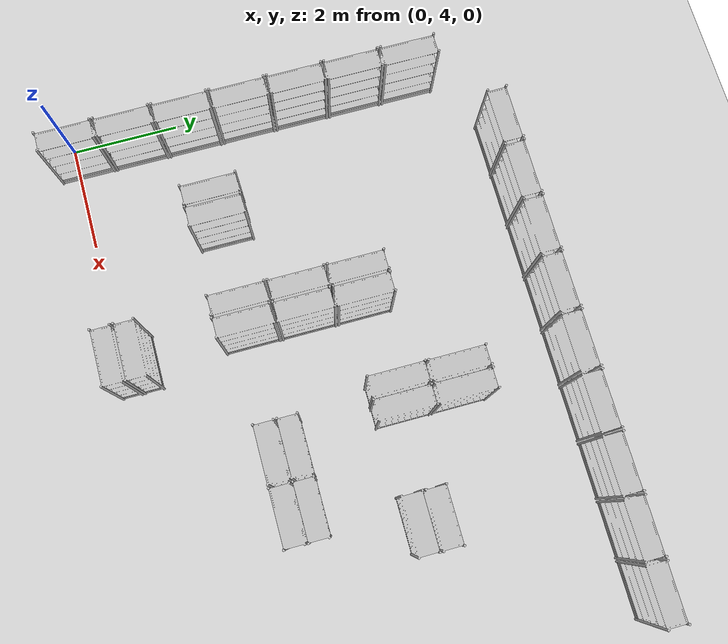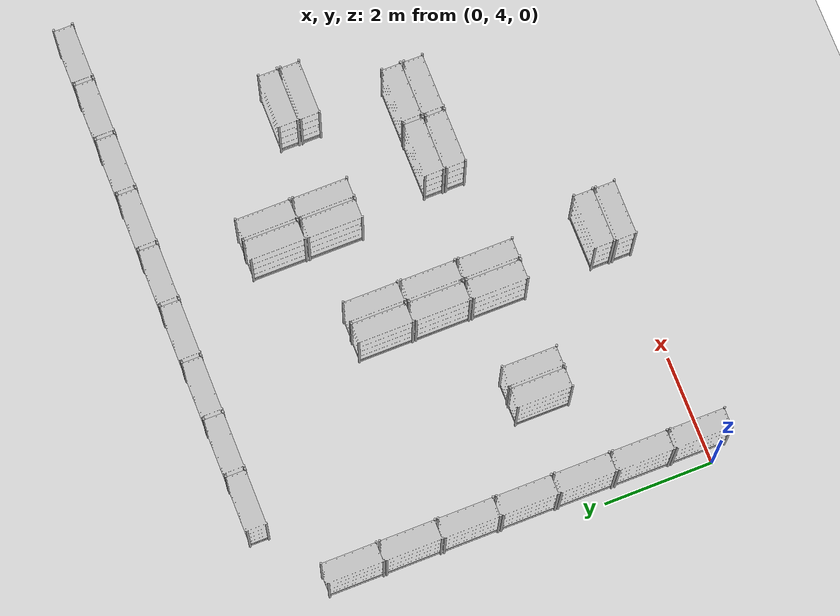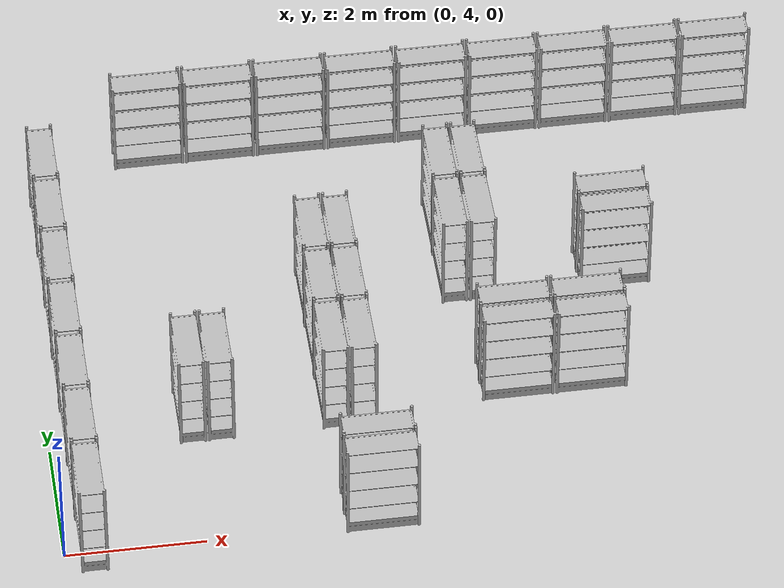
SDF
<sdf version="1.6">
 <world name="default">
  <model name="ground_plane">
   <static>1</static>
   <link name="link">
    <collision name="collision">
     <geometry><plane><normal>0 0 1</normal><size>100 100</size></plane></geometry>
     <surface>
      <contact><collide_bitmask>65535</collide_bitmask></contact>
      <friction><ode><mu>1000</mu><mu2>1000</mu2></ode></friction>
     </surface>
    </collision>
    <visual name="visual">
     <cast_shadows>0</cast_shadows>
     <geometry><plane><normal>0 0 1</normal><size>100 100</size></plane></geometry>
     <material>
      <script><uri>file://media/materials/scripts/gazebo.material</uri><name>Gazebo/Grey</name></script>
     </material>
    </visual>
   </link>
  </model>
  <model name="store_shelf_moduled_9">
   <link name="link">
    <collision name="collision">
     <geometry><mesh><uri>model://store_shelf_moduled/meshes/store_shelf_moduled.dae</uri></mesh></geometry>
    </collision>
    <visual name="visual">
     <geometry><mesh><uri>model://store_shelf_moduled/meshes/store_shelf_moduled.dae</uri></mesh></geometry>
    </visual>
    <inertial>
     <mass>1000</mass>
     <inertia>
      <ixx>840083</ixx>
      <ixy>0</ixy>
      <ixz>0</ixz>
      <iyy>475500</iyy>
      <iyz>0</iyz>
      <izz>1.30208e+06</izz>
     </inertia>
    </inertial>
   </link>
   <static>1</static>
   <pose>11.06 12.02 0 0 0 3.141593</pose>
  </model>
  <model name="store_shelf_moduled_10">
   <link name="link">
    <collision name="collision">
     <geometry><mesh><uri>model://store_shelf_moduled/meshes/store_shelf_moduled.dae</uri></mesh></geometry>
    </collision>
    <visual name="visual">
     <geometry><mesh><uri>model://store_shelf_moduled/meshes/store_shelf_moduled.dae</uri></mesh></geometry>
    </visual>
    <inertial>
     <mass>1000</mass>
     <inertia>
      <ixx>840083</ixx>
      <ixy>0</ixy>
      <ixz>0</ixz>
      <iyy>475500</iyy>
      <iyz>0</iyz>
      <izz>1.30208e+06</izz>
     </inertia>
    </inertial>
   </link>
   <static>1</static>
   <pose>10 12.02 0 0 0 3.141593</pose>
  </model>
  <model name="store_shelf_moduled_11">
   <link name="link">
    <collision name="collision">
     <geometry><mesh><uri>model://store_shelf_moduled/meshes/store_shelf_moduled.dae</uri></mesh></geometry>
    </collision>
    <visual name="visual">
     <geometry><mesh><uri>model://store_shelf_moduled/meshes/store_shelf_moduled.dae</uri></mesh></geometry>
    </visual>
    <inertial>
     <mass>1000</mass>
     <inertia>
      <ixx>840083</ixx>
      <ixy>0</ixy>
      <ixz>0</ixz>
      <iyy>475500</iyy>
      <iyz>0</iyz>
      <izz>1.30208e+06</izz>
     </inertia>
    </inertial>
   </link>
   <static>1</static>
   <pose>8.94 12.02 0 0 0 3.141593</pose>
  </model>
  <model name="store_shelf_moduled_12">
   <link name="link">
    <collision name="collision">
     <geometry><mesh><uri>model://store_shelf_moduled/meshes/store_shelf_moduled.dae</uri></mesh></geometry>
    </collision>
    <visual name="visual">
     <geometry><mesh><uri>model://store_shelf_moduled/meshes/store_shelf_moduled.dae</uri></mesh></geometry>
    </visual>
    <inertial>
     <mass>1000</mass>
     <inertia>
      <ixx>840083</ixx>
      <ixy>0</ixy>
      <ixz>0</ixz>
      <iyy>475500</iyy>
      <iyz>0</iyz>
      <izz>1.30208e+06</izz>
     </inertia>
    </inertial>
   </link>
   <static>1</static>
   <pose>7.88 12.02 0 0 0 3.141593</pose>
  </model>
  <model name="store_shelf_moduled_13">
   <link name="link">
    <collision name="collision">
     <geometry><mesh><uri>model://store_shelf_moduled/meshes/store_shelf_moduled.dae</uri></mesh></geometry>
    </collision>
    <visual name="visual">
     <geometry><mesh><uri>model://store_shelf_moduled/meshes/store_shelf_moduled.dae</uri></mesh></geometry>
    </visual>
    <inertial>
     <mass>1000</mass>
     <inertia>
      <ixx>840083</ixx>
      <ixy>0</ixy>
      <ixz>0</ixz>
      <iyy>475500</iyy>
      <iyz>0</iyz>
      <izz>1.30208e+06</izz>
     </inertia>
    </inertial>
   </link>
   <static>1</static>
   <pose>6.82 12.02 0 0 0 3.141593</pose>
  </model>
  <model name="store_shelf_moduled_14">
   <link name="link">
    <collision name="collision">
     <geometry><mesh><uri>model://store_shelf_moduled/meshes/store_shelf_moduled.dae</uri></mesh></geometry>
    </collision>
    <visual name="visual">
     <geometry><mesh><uri>model://store_shelf_moduled/meshes/store_shelf_moduled.dae</uri></mesh></geometry>
    </visual>
    <inertial>
     <mass>1000</mass>
     <inertia>
      <ixx>840083</ixx>
      <ixy>0</ixy>
      <ixz>0</ixz>
      <iyy>475500</iyy>
      <iyz>0</iyz>
      <izz>1.30208e+06</izz>
     </inertia>
    </inertial>
   </link>
   <static>1</static>
   <pose>5.76 12.02 0 0 0 3.141593</pose>
  </model>
  <model name="store_shelf_moduled_15">
   <link name="link">
    <collision name="collision">
     <geometry><mesh><uri>model://store_shelf_moduled/meshes/store_shelf_moduled.dae</uri></mesh></geometry>
    </collision>
    <visual name="visual">
     <geometry><mesh><uri>model://store_shelf_moduled/meshes/store_shelf_moduled.dae</uri></mesh></geometry>
    </visual>
    <inertial>
     <mass>1000</mass>
     <inertia>
      <ixx>840083</ixx>
      <ixy>0</ixy>
      <ixz>0</ixz>
      <iyy>475500</iyy>
      <iyz>0</iyz>
      <izz>1.30208e+06</izz>
     </inertia>
    </inertial>
   </link>
   <static>1</static>
   <pose>4.7 12.02 0 0 0 3.141593</pose>
  </model>
  <model name="store_shelf_moduled_16">
   <link name="link">
    <collision name="collision">
     <geometry><mesh><uri>model://store_shelf_moduled/meshes/store_shelf_moduled.dae</uri></mesh></geometry>
    </collision>
    <visual name="visual">
     <geometry><mesh><uri>model://store_shelf_moduled/meshes/store_shelf_moduled.dae</uri></mesh></geometry>
    </visual>
    <inertial>
     <mass>1000</mass>
     <inertia>
      <ixx>840083</ixx>
      <ixy>0</ixy>
      <ixz>0</ixz>
      <iyy>475500</iyy>
      <iyz>0</iyz>
      <izz>1.30208e+06</izz>
     </inertia>
    </inertial>
   </link>
   <static>1</static>
   <pose>3.64 12.02 0 0 0 3.141593</pose>
  </model>
  <model name="store_shelf_moduled_17">
   <link name="link">
    <collision name="collision">
     <geometry><mesh><uri>model://store_shelf_moduled/meshes/store_shelf_moduled.dae</uri></mesh></geometry>
    </collision>
    <visual name="visual">
     <geometry><mesh><uri>model://store_shelf_moduled/meshes/store_shelf_moduled.dae</uri></mesh></geometry>
    </visual>
    <inertial>
     <mass>1000</mass>
     <inertia>
      <ixx>840083</ixx>
      <ixy>0</ixy>
      <ixz>0</ixz>
      <iyy>475500</iyy>
      <iyz>0</iyz>
      <izz>1.30208e+06</izz>
     </inertia>
    </inertial>
   </link>
   <static>1</static>
   <pose>2.58 12.02 0 0 0 3.141593</pose>
  </model>
  <model name="store_shelf_moduled_18">
   <link name="link">
    <collision name="collision">
     <geometry><mesh><uri>model://store_shelf_moduled/meshes/store_shelf_moduled.dae</uri></mesh></geometry>
    </collision>
    <visual name="visual">
     <geometry><mesh><uri>model://store_shelf_moduled/meshes/store_shelf_moduled.dae</uri></mesh></geometry>
    </visual>
    <inertial>
     <mass>1000</mass>
     <inertia>
      <ixx>840083</ixx>
      <ixy>0</ixy>
      <ixz>0</ixz>
      <iyy>475500</iyy>
      <iyz>0</iyz>
      <izz>1.30208e+06</izz>
     </inertia>
    </inertial>
   </link>
   <static>1</static>
   <pose>0.2 11.06 0 0 0 -1.570796</pose>
  </model>
  <model name="store_shelf_moduled_19">
   <link name="link">
    <collision name="collision">
     <geometry><mesh><uri>model://store_shelf_moduled/meshes/store_shelf_moduled.dae</uri></mesh></geometry>
    </collision>
    <visual name="visual">
     <geometry><mesh><uri>model://store_shelf_moduled/meshes/store_shelf_moduled.dae</uri></mesh></geometry>
    </visual>
    <inertial>
     <mass>1000</mass>
     <inertia>
      <ixx>840083</ixx>
      <ixy>0</ixy>
      <ixz>0</ixz>
      <iyy>475500</iyy>
      <iyz>0</iyz>
      <izz>1.30208e+06</izz>
     </inertia>
    </inertial>
   </link>
   <static>1</static>
   <pose>0.2 10 0 0 0 -1.570796</pose>
  </model>
  <model name="store_shelf_moduled_20">
   <link name="link">
    <collision name="collision">
     <geometry><mesh><uri>model://store_shelf_moduled/meshes/store_shelf_moduled.dae</uri></mesh></geometry>
    </collision>
    <visual name="visual">
     <geometry><mesh><uri>model://store_shelf_moduled/meshes/store_shelf_moduled.dae</uri></mesh></geometry>
    </visual>
    <inertial>
     <mass>1000</mass>
     <inertia>
      <ixx>840083</ixx>
      <ixy>0</ixy>
      <ixz>0</ixz>
      <iyy>475500</iyy>
      <iyz>0</iyz>
      <izz>1.30208e+06</izz>
     </inertia>
    </inertial>
   </link>
   <static>1</static>
   <pose>0.2 8.94 0 0 0 -1.570796</pose>
  </model>
  <model name="store_shelf_moduled_21">
   <link name="link">
    <collision name="collision">
     <geometry><mesh><uri>model://store_shelf_moduled/meshes/store_shelf_moduled.dae</uri></mesh></geometry>
    </collision>
    <visual name="visual">
     <geometry><mesh><uri>model://store_shelf_moduled/meshes/store_shelf_moduled.dae</uri></mesh></geometry>
    </visual>
    <inertial>
     <mass>1000</mass>
     <inertia>
      <ixx>840083</ixx>
      <ixy>0</ixy>
      <ixz>0</ixz>
      <iyy>475500</iyy>
      <iyz>0</iyz>
      <izz>1.30208e+06</izz>
     </inertia>
    </inertial>
   </link>
   <static>1</static>
   <pose>0.2 7.88 0 0 0 -1.570796</pose>
  </model>
  <model name="store_shelf_moduled_22">
   <link name="link">
    <collision name="collision">
     <geometry><mesh><uri>model://store_shelf_moduled/meshes/store_shelf_moduled.dae</uri></mesh></geometry>
    </collision>
    <visual name="visual">
     <geometry><mesh><uri>model://store_shelf_moduled/meshes/store_shelf_moduled.dae</uri></mesh></geometry>
    </visual>
    <inertial>
     <mass>1000</mass>
     <inertia>
      <ixx>840083</ixx>
      <ixy>0</ixy>
      <ixz>0</ixz>
      <iyy>475500</iyy>
      <iyz>0</iyz>
      <izz>1.30208e+06</izz>
     </inertia>
    </inertial>
   </link>
   <static>1</static>
   <pose>0.2 6.82 0 0 0 -1.570796</pose>
  </model>
  <model name="store_shelf_moduled_23">
   <link name="link">
    <collision name="collision">
     <geometry><mesh><uri>model://store_shelf_moduled/meshes/store_shelf_moduled.dae</uri></mesh></geometry>
    </collision>
    <visual name="visual">
     <geometry><mesh><uri>model://store_shelf_moduled/meshes/store_shelf_moduled.dae</uri></mesh></geometry>
    </visual>
    <inertial>
     <mass>1000</mass>
     <inertia>
      <ixx>840083</ixx>
      <ixy>0</ixy>
      <ixz>0</ixz>
      <iyy>475500</iyy>
      <iyz>0</iyz>
      <izz>1.30208e+06</izz>
     </inertia>
    </inertial>
   </link>
   <static>1</static>
   <pose>0.2 5.76 0 0 0 -1.570796</pose>
  </model>
  <model name="store_shelf_moduled_24">
   <link name="link">
    <collision name="collision">
     <geometry><mesh><uri>model://store_shelf_moduled/meshes/store_shelf_moduled.dae</uri></mesh></geometry>
    </collision>
    <visual name="visual">
     <geometry><mesh><uri>model://store_shelf_moduled/meshes/store_shelf_moduled.dae</uri></mesh></geometry>
    </visual>
    <inertial>
     <mass>1000</mass>
     <inertia>
      <ixx>840083</ixx>
      <ixy>0</ixy>
      <ixz>0</ixz>
      <iyy>475500</iyy>
      <iyz>0</iyz>
      <izz>1.30208e+06</izz>
     </inertia>
    </inertial>
   </link>
   <static>1</static>
   <pose>0.2 4.7 0 0 0 -1.570796</pose>
  </model>
  <model name="store_shelf_moduled_27">
   <link name="link">
    <collision name="collision">
     <geometry><mesh><uri>model://store_shelf_moduled/meshes/store_shelf_moduled.dae</uri></mesh></geometry>
    </collision>
    <visual name="visual">
     <geometry><mesh><uri>model://store_shelf_moduled/meshes/store_shelf_moduled.dae</uri></mesh></geometry>
    </visual>
    <inertial>
     <mass>1000</mass>
     <inertia>
      <ixx>840083</ixx>
      <ixy>0</ixy>
      <ixz>0</ixz>
      <iyy>475500</iyy>
      <iyz>0</iyz>
      <izz>1.30208e+06</izz>
     </inertia>
    </inertial>
   </link>
   <static>1</static>
   <pose>4.28 5.9 0 0 0 1.570796</pose>
  </model>
  <model name="store_shelf_moduled_28">
   <link name="link">
    <collision name="collision">
     <geometry><mesh><uri>model://store_shelf_moduled/meshes/store_shelf_moduled.dae</uri></mesh></geometry>
    </collision>
    <visual name="visual">
     <geometry><mesh><uri>model://store_shelf_moduled/meshes/store_shelf_moduled.dae</uri></mesh></geometry>
    </visual>
    <inertial>
     <mass>1000</mass>
     <inertia>
      <ixx>840083</ixx>
      <ixy>0</ixy>
      <ixz>0</ixz>
      <iyy>475500</iyy>
      <iyz>0</iyz>
      <izz>1.30208e+06</izz>
     </inertia>
    </inertial>
   </link>
   <static>1</static>
   <pose>4.28 6.96 0 0 0 -1.570796</pose>
  </model>
  <model name="store_shelf_moduled_29">
   <link name="link">
    <collision name="collision">
     <geometry><mesh><uri>model://store_shelf_moduled/meshes/store_shelf_moduled.dae</uri></mesh></geometry>
    </collision>
    <visual name="visual">
     <geometry><mesh><uri>model://store_shelf_moduled/meshes/store_shelf_moduled.dae</uri></mesh></geometry>
    </visual>
    <inertial>
     <mass>1000</mass>
     <inertia>
      <ixx>840083</ixx>
      <ixy>0</ixy>
      <ixz>0</ixz>
      <iyy>475500</iyy>
      <iyz>0</iyz>
      <izz>1.30208e+06</izz>
     </inertia>
    </inertial>
   </link>
   <static>1</static>
   <pose>4.28 6.96 0 0 0 1.570796</pose>
  </model>
  <model name="store_shelf_moduled_30">
   <link name="link">
    <collision name="collision">
     <geometry><mesh><uri>model://store_shelf_moduled/meshes/store_shelf_moduled.dae</uri></mesh></geometry>
    </collision>
    <visual name="visual">
     <geometry><mesh><uri>model://store_shelf_moduled/meshes/store_shelf_moduled.dae</uri></mesh></geometry>
    </visual>
    <inertial>
     <mass>1000</mass>
     <inertia>
      <ixx>840083</ixx>
      <ixy>0</ixy>
      <ixz>0</ixz>
      <iyy>475500</iyy>
      <iyz>0</iyz>
      <izz>1.30208e+06</izz>
     </inertia>
    </inertial>
   </link>
   <static>1</static>
   <pose>4.28 8.02 0 0 0 -1.570796</pose>
  </model>
  <model name="store_shelf_moduled_31">
   <link name="link">
    <collision name="collision">
     <geometry><mesh><uri>model://store_shelf_moduled/meshes/store_shelf_moduled.dae</uri></mesh></geometry>
    </collision>
    <visual name="visual">
     <geometry><mesh><uri>model://store_shelf_moduled/meshes/store_shelf_moduled.dae</uri></mesh></geometry>
    </visual>
    <inertial>
     <mass>1000</mass>
     <inertia>
      <ixx>840083</ixx>
      <ixy>0</ixy>
      <ixz>0</ixz>
      <iyy>475500</iyy>
      <iyz>0</iyz>
      <izz>1.30208e+06</izz>
     </inertia>
    </inertial>
   </link>
   <static>1</static>
   <pose>4.28 8.02 0 0 0 1.570796</pose>
  </model>
  <model name="store_shelf_moduled_32">
   <link name="link">
    <collision name="collision">
     <geometry><mesh><uri>model://store_shelf_moduled/meshes/store_shelf_moduled.dae</uri></mesh></geometry>
    </collision>
    <visual name="visual">
     <geometry><mesh><uri>model://store_shelf_moduled/meshes/store_shelf_moduled.dae</uri></mesh></geometry>
    </visual>
    <inertial>
     <mass>1000</mass>
     <inertia>
      <ixx>840083</ixx>
      <ixy>0</ixy>
      <ixz>0</ixz>
      <iyy>475500</iyy>
      <iyz>0</iyz>
      <izz>1.30208e+06</izz>
     </inertia>
    </inertial>
   </link>
   <static>1</static>
   <pose>4.28 9.08 0 0 0 -1.570796</pose>
  </model>
  <model name="store_shelf_moduled_33">
   <link name="link">
    <collision name="collision">
     <geometry><mesh><uri>model://store_shelf_moduled/meshes/store_shelf_moduled.dae</uri></mesh></geometry>
    </collision>
    <visual name="visual">
     <geometry><mesh><uri>model://store_shelf_moduled/meshes/store_shelf_moduled.dae</uri></mesh></geometry>
    </visual>
    <inertial>
     <mass>1000</mass>
     <inertia>
      <ixx>840083</ixx>
      <ixy>0</ixy>
      <ixz>0</ixz>
      <iyy>475500</iyy>
      <iyz>0</iyz>
      <izz>1.30208e+06</izz>
     </inertia>
    </inertial>
   </link>
   <static>1</static>
   <pose>6.2 6.54 0 0 0 0</pose>
  </model>
  <model name="store_shelf_moduled_34">
   <link name="link">
    <collision name="collision">
     <geometry><mesh><uri>model://store_shelf_moduled/meshes/store_shelf_moduled.dae</uri></mesh></geometry>
    </collision>
    <visual name="visual">
     <geometry><mesh><uri>model://store_shelf_moduled/meshes/store_shelf_moduled.dae</uri></mesh></geometry>
    </visual>
    <inertial>
     <mass>1000</mass>
     <inertia>
      <ixx>840083</ixx>
      <ixy>0</ixy>
      <ixz>0</ixz>
      <iyy>475500</iyy>
      <iyz>0</iyz>
      <izz>1.30208e+06</izz>
     </inertia>
    </inertial>
   </link>
   <static>1</static>
   <pose>7.26 6.54 0 0 0 -3.141593</pose>
  </model>
  <model name="store_shelf_moduled_35">
   <link name="link">
    <collision name="collision">
     <geometry><mesh><uri>model://store_shelf_moduled/meshes/store_shelf_moduled.dae</uri></mesh></geometry>
    </collision>
    <visual name="visual">
     <geometry><mesh><uri>model://store_shelf_moduled/meshes/store_shelf_moduled.dae</uri></mesh></geometry>
    </visual>
    <inertial>
     <mass>1000</mass>
     <inertia>
      <ixx>840083</ixx>
      <ixy>0</ixy>
      <ixz>0</ixz>
      <iyy>475500</iyy>
      <iyz>0</iyz>
      <izz>1.30208e+06</izz>
     </inertia>
    </inertial>
   </link>
   <static>1</static>
   <pose>7.26 6.54 0 0 0 0</pose>
  </model>
  <model name="store_shelf_moduled_36">
   <link name="link">
    <collision name="collision">
     <geometry><mesh><uri>model://store_shelf_moduled/meshes/store_shelf_moduled.dae</uri></mesh></geometry>
    </collision>
    <visual name="visual">
     <geometry><mesh><uri>model://store_shelf_moduled/meshes/store_shelf_moduled.dae</uri></mesh></geometry>
    </visual>
    <inertial>
     <mass>1000</mass>
     <inertia>
      <ixx>840083</ixx>
      <ixy>0</ixy>
      <ixz>0</ixz>
      <iyy>475500</iyy>
      <iyz>0</iyz>
      <izz>1.30208e+06</izz>
     </inertia>
    </inertial>
   </link>
   <static>1</static>
   <pose>8.32 6.54 0 0 0 -3.141593</pose>
  </model>
  <model name="store_shelf_moduled_37">
   <link name="link">
    <collision name="collision">
     <geometry><mesh><uri>model://store_shelf_moduled/meshes/store_shelf_moduled.dae</uri></mesh></geometry>
    </collision>
    <visual name="visual">
     <geometry><mesh><uri>model://store_shelf_moduled/meshes/store_shelf_moduled.dae</uri></mesh></geometry>
    </visual>
    <inertial>
     <mass>1000</mass>
     <inertia>
      <ixx>840083</ixx>
      <ixy>0</ixy>
      <ixz>0</ixz>
      <iyy>475500</iyy>
      <iyz>0</iyz>
      <izz>1.30208e+06</izz>
     </inertia>
    </inertial>
   </link>
   <static>1</static>
   <pose>6.32 8.16 0 0 0 1.570796</pose>
  </model>
  <model name="store_shelf_moduled_38">
   <link name="link">
    <collision name="collision">
     <geometry><mesh><uri>model://store_shelf_moduled/meshes/store_shelf_moduled.dae</uri></mesh></geometry>
    </collision>
    <visual name="visual">
     <geometry><mesh><uri>model://store_shelf_moduled/meshes/store_shelf_moduled.dae</uri></mesh></geometry>
    </visual>
    <inertial>
     <mass>1000</mass>
     <inertia>
      <ixx>840083</ixx>
      <ixy>0</ixy>
      <ixz>0</ixz>
      <iyy>475500</iyy>
      <iyz>0</iyz>
      <izz>1.30208e+06</izz>
     </inertia>
    </inertial>
   </link>
   <static>1</static>
   <pose>6.32 9.22 0 0 0 -1.570796</pose>
  </model>
  <model name="store_shelf_moduled_39">
   <link name="link">
    <collision name="collision">
     <geometry><mesh><uri>model://store_shelf_moduled/meshes/store_shelf_moduled.dae</uri></mesh></geometry>
    </collision>
    <visual name="visual">
     <geometry><mesh><uri>model://store_shelf_moduled/meshes/store_shelf_moduled.dae</uri></mesh></geometry>
    </visual>
    <inertial>
     <mass>1000</mass>
     <inertia>
      <ixx>840083</ixx>
      <ixy>0</ixy>
      <ixz>0</ixz>
      <iyy>475500</iyy>
      <iyz>0</iyz>
      <izz>1.30208e+06</izz>
     </inertia>
    </inertial>
   </link>
   <static>1</static>
   <pose>6.32 9.22 0 0 0 1.570796</pose>
  </model>
  <model name="store_shelf_moduled_40">
   <link name="link">
    <collision name="collision">
     <geometry><mesh><uri>model://store_shelf_moduled/meshes/store_shelf_moduled.dae</uri></mesh></geometry>
    </collision>
    <visual name="visual">
     <geometry><mesh><uri>model://store_shelf_moduled/meshes/store_shelf_moduled.dae</uri></mesh></geometry>
    </visual>
    <inertial>
     <mass>1000</mass>
     <inertia>
      <ixx>840083</ixx>
      <ixy>0</ixy>
      <ixz>0</ixz>
      <iyy>475500</iyy>
      <iyz>0</iyz>
      <izz>1.30208e+06</izz>
     </inertia>
    </inertial>
   </link>
   <static>1</static>
   <pose>6.32 10.28 0 0 0 -1.570796</pose>
  </model>
  <model name="store_shelf_moduled_41">
   <link name="link">
    <collision name="collision">
     <geometry><mesh><uri>model://store_shelf_moduled/meshes/store_shelf_moduled.dae</uri></mesh></geometry>
    </collision>
    <visual name="visual">
     <geometry><mesh><uri>model://store_shelf_moduled/meshes/store_shelf_moduled.dae</uri></mesh></geometry>
    </visual>
    <inertial>
     <mass>1000</mass>
     <inertia>
      <ixx>840083</ixx>
      <ixy>0</ixy>
      <ixz>0</ixz>
      <iyy>475500</iyy>
      <iyz>0</iyz>
      <izz>1.30208e+06</izz>
     </inertia>
    </inertial>
   </link>
   <static>1</static>
   <pose>7.94 8.58 0 0 0 0</pose>
  </model>
  <model name="store_shelf_moduled_42">
   <link name="link">
    <collision name="collision">
     <geometry><mesh><uri>model://store_shelf_moduled/meshes/store_shelf_moduled.dae</uri></mesh></geometry>
    </collision>
    <visual name="visual">
     <geometry><mesh><uri>model://store_shelf_moduled/meshes/store_shelf_moduled.dae</uri></mesh></geometry>
    </visual>
    <inertial>
     <mass>1000</mass>
     <inertia>
      <ixx>840083</ixx>
      <ixy>0</ixy>
      <ixz>0</ixz>
      <iyy>475500</iyy>
      <iyz>0</iyz>
      <izz>1.30208e+06</izz>
     </inertia>
    </inertial>
   </link>
   <static>1</static>
   <pose>9 8.58 0 0 0 -3.141593</pose>
  </model>
  <model name="store_shelf_moduled_49">
   <link name="link">
    <collision name="collision">
     <geometry><mesh><uri>model://store_shelf_moduled/meshes/store_shelf_moduled.dae</uri></mesh></geometry>
    </collision>
    <visual name="visual">
     <geometry><mesh><uri>model://store_shelf_moduled/meshes/store_shelf_moduled.dae</uri></mesh></geometry>
    </visual>
    <inertial>
     <mass>1000</mass>
     <inertia>
      <ixx>840083</ixx>
      <ixy>0</ixy>
      <ixz>0</ixz>
      <iyy>475500</iyy>
      <iyz>0</iyz>
      <izz>1.30208e+06</izz>
     </inertia>
    </inertial>
   </link>
   <static>1</static>
   <pose>2.24 5.9 0 0 0 1.570796</pose>
  </model>
  <model name="store_shelf_moduled_50">
   <link name="link">
    <collision name="collision">
     <geometry><mesh><uri>model://store_shelf_moduled/meshes/store_shelf_moduled.dae</uri></mesh></geometry>
    </collision>
    <visual name="visual">
     <geometry><mesh><uri>model://store_shelf_moduled/meshes/store_shelf_moduled.dae</uri></mesh></geometry>
    </visual>
    <inertial>
     <mass>1000</mass>
     <inertia>
      <ixx>840083</ixx>
      <ixy>0</ixy>
      <ixz>0</ixz>
      <iyy>475500</iyy>
      <iyz>0</iyz>
      <izz>1.30208e+06</izz>
     </inertia>
    </inertial>
   </link>
   <static>1</static>
   <pose>2.24 6.96 0 0 0 -1.570796</pose>
  </model>
  <model name="store_shelf_moduled_65">
   <link name="link">
    <collision name="collision">
     <geometry><mesh><uri>model://store_shelf_moduled/meshes/store_shelf_moduled.dae</uri></mesh></geometry>
    </collision>
    <visual name="visual">
     <geometry><mesh><uri>model://store_shelf_moduled/meshes/store_shelf_moduled.dae</uri></mesh></geometry>
    </visual>
    <inertial>
     <mass>1000</mass>
     <inertia>
      <ixx>840083</ixx>
      <ixy>0</ixy>
      <ixz>0</ixz>
      <iyy>475500</iyy>
      <iyz>0</iyz>
      <izz>1.30208e+06</izz>
     </inertia>
    </inertial>
   </link>
   <static>1</static>
   <pose>3.94 4.28 0 0 0 0</pose>
  </model>
  <model name="store_shelf_moduled_66">
   <link name="link">
    <collision name="collision">
     <geometry><mesh><uri>model://store_shelf_moduled/meshes/store_shelf_moduled.dae</uri></mesh></geometry>
    </collision>
    <visual name="visual">
     <geometry><mesh><uri>model://store_shelf_moduled/meshes/store_shelf_moduled.dae</uri></mesh></geometry>
    </visual>
    <inertial>
     <mass>1000</mass>
     <inertia>
      <ixx>840083</ixx>
      <ixy>0</ixy>
      <ixz>0</ixz>
      <iyy>475500</iyy>
      <iyz>0</iyz>
      <izz>1.30208e+06</izz>
     </inertia>
    </inertial>
   </link>
   <static>1</static>
   <pose>5 4.28 0 0 0 -3.141593</pose>
  </model>
 </world>
</sdf>
